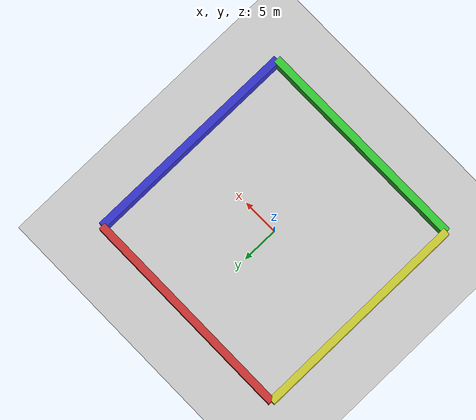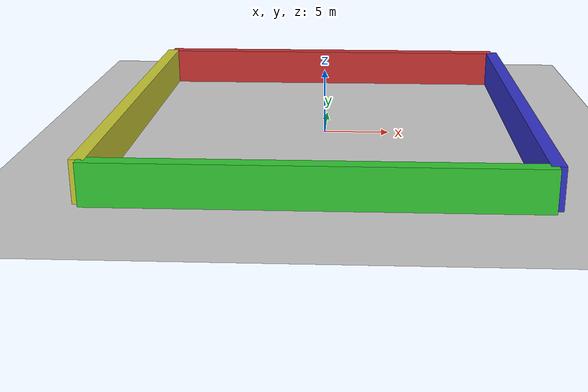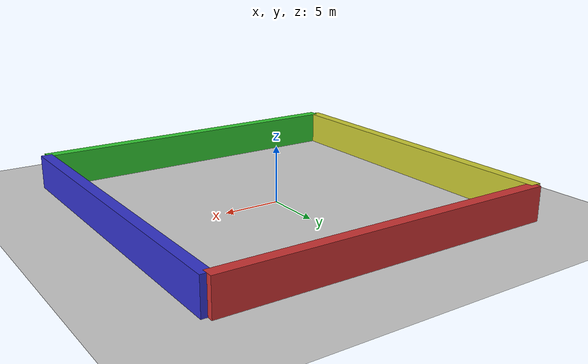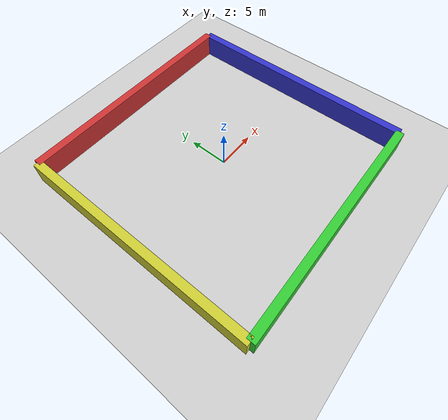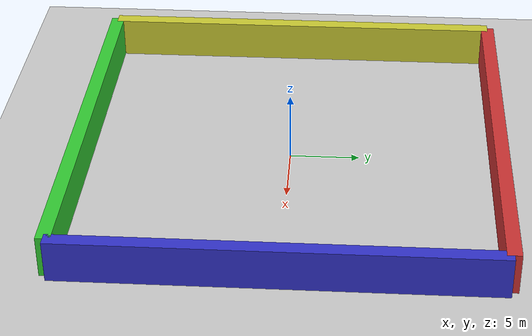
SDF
<sdf version="1.6">
  <world name="default">
    <physics name="1ms" type="ignored">
      <max_step_size>0.001</max_step_size>
      <real_time_factor>1.0</real_time_factor>
    </physics>

    <plugin filename="libignition-gazebo-physics-system.so" name="ignition::gazebo::systems::Physics"></plugin>
    <plugin filename="libignition-gazebo-user-commands-system.so" name="ignition::gazebo::systems::UserCommands"></plugin>
    <plugin filename="libignition-gazebo-scene-broadcaster-system.so" name="ignition::gazebo::systems::SceneBroadcaster"></plugin>
    <plugin filename="libignition-gazebo-sensors-system.so" name="ignition::gazebo::systems::Sensors"></plugin>

    <!-- Add a gray ground plane -->
    <model name="ground_plane">
      <static>true</static>
      <link name="link">
        <collision name="collision">
          <geometry>
            <plane>
              <normal>0 0 1</normal>
              <size>100 100</size>
            </plane>
          </geometry>
        </collision>
        <visual name="visual">
          <geometry>
            <plane>
              <normal>0 0 1</normal>
              <size>100 100</size>
            </plane>
          </geometry>
          <material>
            <ambient>0.8 0.8 0.8 1</ambient>
            <diffuse>0.8 0.8 0.8 1</diffuse>
            <specular>0.1 0.1 0.1 1</specular>
          </material>
        </visual>
      </link>
    </model>

    <!-- Add boundary walls -->
    <!-- North wall -->
    <model name="wall_north">
      <static>true</static>
      <pose>0 15 1.5 0 0 0</pose>
      <link name="link">
        <collision name="collision">
          <geometry>
            <box>
              <size>30 1.0 3</size>
            </box>
          </geometry>
        </collision>
        <visual name="visual">
          <geometry>
            <box>
              <size>30 1.0 3</size>
            </box>
          </geometry>
          <material>
            <ambient>0.8 0.2 0.2 1</ambient>
            <diffuse>0.8 0.2 0.2 1</diffuse>
            <specular>0.1 0.1 0.1 1</specular>
          </material>
        </visual>
      </link>
    </model>

    <!-- South wall -->
    <model name="wall_south">
      <static>true</static>
      <pose>0 -15 1.5 0 0 0</pose>
      <link name="link">
        <collision name="collision">
          <geometry>
            <box>
              <size>30 1.0 3</size>
            </box>
          </geometry>
        </collision>
        <visual name="visual">
          <geometry>
            <box>
              <size>30 1.0 3</size>
            </box>
          </geometry>
          <material>
            <ambient>0.2 0.8 0.2 1</ambient>
            <diffuse>0.2 0.8 0.2 1</diffuse>
            <specular>0.1 0.1 0.1 1</specular>
          </material>
        </visual>
      </link>
    </model>

    <!-- East wall -->
    <model name="wall_east">
      <static>true</static>
      <pose>15 0 1.5 0 0 0</pose>
      <link name="link">
        <collision name="collision">
          <geometry>
            <box>
              <size>1.0 30 3</size>
            </box>
          </geometry>
        </collision>
        <visual name="visual">
          <geometry>
            <box>
              <size>1.0 30 3</size>
            </box>
          </geometry>
          <material>
            <ambient>0.2 0.2 0.8 1</ambient>
            <diffuse>0.2 0.2 0.8 1</diffuse>
            <specular>0.1 0.1 0.1 1</specular>
          </material>
        </visual>
      </link>
    </model>

    <!-- West wall -->
    <model name="wall_west">
      <static>true</static>
      <pose>-15 0 1.5 0 0 0</pose>
      <link name="link">
        <collision name="collision">
          <geometry>
            <box>
              <size>1.0 30 3</size>
            </box>
          </geometry>
        </collision>
        <visual name="visual">
          <geometry>
            <box>
              <size>1.0 30 3</size>
            </box>
          </geometry>
          <material>
            <ambient>0.8 0.8 0.2 1</ambient>
            <diffuse>0.8 0.8 0.2 1</diffuse>
            <specular>0.1 0.1 0.1 1</specular>
          </material>
        </visual>
      </link>
    </model>

    <light type="directional" name="sun">
      <cast_shadows>true</cast_shadows>
      <pose>0 0 10 0 0 0</pose>
      <diffuse>0.8 0.8 0.8 1</diffuse>
      <specular>0.2 0.2 0.2 1</specular>
      <attenuation>
        <range>1000</range>
        <constant>0.9</constant>
        <linear>0.01</linear>
        <quadratic>0.001</quadratic>
      </attenuation>
      <direction>-0.5 0.1 -0.9</direction>
    </light>

    <gravity>0 0 -9.8</gravity>
    <magnetic_field>6e-06 2.3e-05 -4.2e-05</magnetic_field>
    <atmosphere type="adiabatic">
      <pressure>101325</pressure>
      <temperature>288.15</temperature>
    </atmosphere>
  </world>
</sdf>
